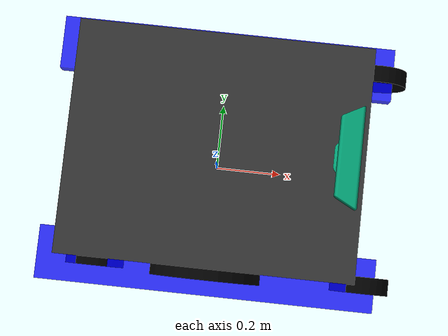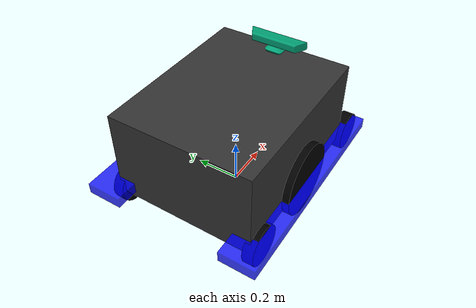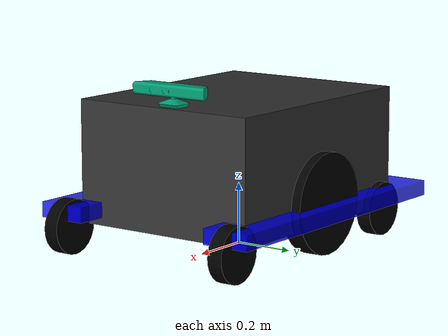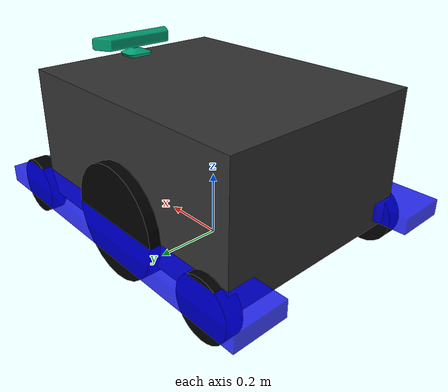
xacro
<?xml version="1.0"?>

<robot xmlns:xacro="http://www.ros.org/wiki/xacro" name="wheelchair">

  <xacro:include filename="$(find baxter_wheelchair_description)/urdf/sensors/kinect_camera.urdf.xacro" />

  <xacro:property name="PI" value="3.14159265359" />
  <xacro:property name="M_PI" value="3.1415926535897931" />

  <xacro:property name="chair_width" value="0.643" /> <!-- From front wheel right joint to front wheel left joint -->
  <xacro:property name="chair_length" value="0.812" /> <!-- From front wheel joint to back wheel joint -->
  <!-- From front wheel joint to head rest -->
  <xacro:property name="chair_height" value="0.4" /> <!-- From front wheel joint to approx height -->
  <xacro:property name="chair_weight" value="10.0" />

  <xacro:property name="main_wheel_length" value="0.065" />
  <xacro:property name="main_wheel_radius" value=".165" />
  <xacro:property name="main_wheel_weight" value="2.0" />

  <xacro:property name="small_wheel_radius" value=".089" />
  <xacro:property name="small_wheel_length" value=".05" />
  <xacro:property name="small_wheel_weight" value="1.0" />

  <!-- Kinect Camera Location (Nominally 0) -->
  <xacro:property name="cal_kinect_x" value="0.0" />
  <xacro:property name="cal_kinect_y" value="0.0" />
  <xacro:property name="cal_kinect_z" value="0.0" />
  <xacro:property name="cal_kinect_roll" value="0.0" />
  <xacro:property name="cal_kinect_pitch" value="0.0" />
  <xacro:property name="cal_kinect_yaw" value="0.0" />

  <xacro:macro name="box_intertia" params="height length width weight" >
    <inertia ixx="${1/12 * weight * (height + length)}" ixy="0" ixz="0" iyy="${1/12 * weight * (width + length)}" iyz="0" izz="${1/12 * weight * (width + height)}" />
  </xacro:macro>

  <xacro:macro name="cylinder_intertia" params="length radius weight" >
    <inertia ixx="${1/12 * weight * (3 * radius * radius + length * length)}" ixy="0" ixz="0" iyy="${1/12 * weight * (3 * radius*radius + length*length)}" iyz="0" izz="${1/2 * weight * radius*radius}" />
  </xacro:macro>

  <link name="base_footprint">
    <visual>
      <origin xyz="0 0 0" rpy="0 0 0" />
        <geometry>
          <box size="0.001 0.001 0.001" />
      </geometry>
    </visual>
  </link>

  <joint name="base_footprint_joint" type="fixed">
    <origin xyz=" 0 0 0.3" rpy="0 0 0"/> <!-- accomodating for change in chair height -->
    <parent link="base_footprint"/>
    <child link="base_link"/>
  </joint>

  <link name="base_link">
    <visual>
      <geometry>
        <box size="${chair_length} ${chair_width} ${chair_height}"/>
      </geometry>
      <material name="darkgray">
        <color rgba=".2 .2 .2 1"/>
      </material>
    </visual>
    <collision>
      <geometry>
        <box size="${chair_length} ${chair_width} ${chair_height}"/>
      </geometry>
    </collision>
    <inertial>
      <mass value="${chair_weight}"/>
      <xacro:box_intertia height="${chair_height}" length="${chair_length}" width="${chair_width}" weight="${chair_weight}" />
    </inertial>
  </link>

  <!-- Base of Kinect Mount -->
  <xacro:kinect_camera_v0 name="kinect_camera" parent="base_link" >
    <origin xyz="${chair_length/2 - 0.02} 0 ${chair_height/2 + 0.05}" rpy="0 0 0" />
  </xacro:kinect_camera_v0>

  <link name="imu_link">
    <inertial>
      <mass value="0.01"/>
      <origin xyz="0 0 0"/>
      <inertia ixx="1.0E-6" ixy="0" ixz="0" iyy="1.0E-6" iyz="0" izz="1.0E-6"/>
    </inertial>
    <visual>
      <origin rpy="0 0 0" xyz="0 0 0"/>
      <geometry>
        <box size="0.01 0.01 0.01"/>
      </geometry>
    </visual>
  </link>

  <joint name="imu_joint" type="fixed">
    <parent link="base_link"/>
    <child link="imu_link"/>
    <origin xyz="0 0 0" rpy="${PI} 0 0"/>
  </joint>

<!--Right Bar -->
  <link name="right_bar">
    <visual>
      <geometry>
        <box size="${chair_length + chair_length/4} ${chair_width/4} ${chair_height/8}"/>
      </geometry>
      <material name="blue">
        <color rgba="0 0 1 0.8"/>
      </material>
    </visual>
    <collision>
      <geometry>
        <box size="${chair_length + chair_length/4} ${chair_width/4} ${chair_height/8}"/>
      </geometry>
    </collision>
    <inertial>
      <mass value="2.0"/>
      <inertia ixx="1e-3" ixy="1e-3" ixz="1e-3" iyy="1e-3" iyz="1e-3" izz="1e-3"/>
    </inertial>
  </link>

  <joint name="right_bar_joint" type="fixed">
    <axis xyz="0 0 0"/>
    <parent link="base_link"/>
    <child link="right_bar"/>
    <origin rpy="0 0 0" xyz="0.0 ${chair_width/2} -${chair_height/4 + chair_height/8}"/> <!--chair_height/4 + chair_height/8 because this is relative to the center of the bar -->
  </joint>

<!--Left Bar -->
  <link name="left_bar">
    <visual>
      <geometry>
        <box size="${chair_length + chair_length/4} ${chair_width/4} ${chair_height/8}"/>
      </geometry>
      <material name="blue">
        <color rgba="0 0 1 0.8"/>
      </material>
    </visual>
    <collision>
      <geometry>
        <box size="${chair_length + chair_length/4} ${chair_width/4} ${chair_height/8}"/>
      </geometry>
    </collision>
    <inertial>
      <mass value="2.0"/>
      <inertia ixx="1e-3" ixy="1e-3" ixz="1e-3" iyy="1e-3" iyz="1e-3" izz="1e-3"/>
    </inertial>
  </link>

  <joint name="left_bar_joint" type="fixed">
    <axis xyz="0 0 0"/>
    <parent link="base_link"/>
    <child link="left_bar"/>
    <origin rpy="0 0 0" xyz="0.0 -${chair_width/2} -${chair_height/4 + chair_height/8}"/> <!--chair_height/4 + chair_height/8 because this is relative to the center of the bar -->
  </joint>

<!--Main Wheels -->
  <joint name="right_main_wheel_joint" type="continuous">
    <axis xyz="0 0 -1"/>
    <parent link="right_bar"/>
    <child link="right_main_wheel"/>
    <origin rpy="1.57075 0 0" xyz="0.0 0.0 ${main_wheel_radius - chair_height/8 - small_wheel_radius}"/> <!-- accomodating for change in chair height -->
  </joint>

  <link name="right_main_wheel">
    <visual>
      <geometry>
        <cylinder length="${main_wheel_length}" radius="${main_wheel_radius}"/>
      </geometry>
      <material name="black">
        <color rgba="0 0 0 1"/>
      </material>
    </visual>
    <collision>
      <geometry>
        <cylinder length="${main_wheel_length}" radius="${main_wheel_radius}"/>
      </geometry>
    </collision>
    <inertial>
      <mass value="${main_wheel_weight}"/>
      <xacro:cylinder_intertia length="${main_wheel_length}" radius="${main_wheel_radius}" weight="${main_wheel_weight}" />
    </inertial>
  </link>

  <joint name="left_main_wheel_joint" type="continuous">
    <axis xyz="0 0 -1"/>
    <parent link="left_bar"/>
    <child link="left_main_wheel"/>
    <origin rpy="1.57075 0 0" xyz="0.0 0.0 ${main_wheel_radius - chair_height/8 - small_wheel_radius}"/> <!-- accomodating for change in chair height -->
  </joint>

  <link name="left_main_wheel">
    <visual>
      <geometry>
        <cylinder length="${main_wheel_length}" radius="${main_wheel_radius}"/>
      </geometry>
      <material name="black">
        <color rgba="0 0 0 1"/>
      </material>
    </visual>
    <collision>
      <geometry>
        <cylinder length="${main_wheel_length}" radius="${main_wheel_radius}"/>
      </geometry>
    </collision>
    <inertial>
      <mass value="${main_wheel_weight}"/>
      <xacro:cylinder_intertia length="${main_wheel_length}" radius="${main_wheel_radius}" weight="${main_wheel_weight}" />
    </inertial>
  </link>

<!--Front Wheels -->
  <link name="front_right_swivel">
    <visual>
      <geometry>
        <cylinder length="0.065" radius="0.01"/>
      </geometry>
      <material name="darkgray">
        <color rgba=".2 .2 .2 1"/>
      </material>
    </visual>
    <collision>
      <geometry>
        <cylinder length="0.065" radius="0.01"/>
      </geometry>
    </collision>
    <inertial>
      <mass value=".1"/>
      <xacro:cylinder_intertia length="0.065" radius="0.01" weight="0.1" />
    </inertial>
  </link>

  <joint name="front_right_swivel_joint" type="continuous">
    <axis xyz="0 0 1"/>
    <parent link="right_bar"/>
    <child link="front_right_swivel"/>
    <origin rpy="0 0 0" xyz="-${chair_length/2} 0.0 -${chair_height/8}"/>
    <dynamics damping="0.0" friction="0.5" />
  </joint>

  <joint name="front_right_wheel_joint" type="continuous">
    <axis xyz="0 0 1"/>
    <parent link="front_right_swivel"/>
    <child link="front_right_wheel"/>
    <origin rpy="1.57075 0 0" xyz="0.065 0 0"/>
    <dynamics damping="0.0" friction="0.5" />
  </joint>

  <link name="front_right_wheel">
    <visual>
      <geometry>
        <cylinder length="${small_wheel_length}" radius="${small_wheel_radius}"/>
      </geometry>
      <material name="black">
        <color rgba="0 0 0 1"/>
      </material>
    </visual>
    <collision>
      <geometry>
        <cylinder length="${small_wheel_length}" radius="${small_wheel_radius}"/>
      </geometry>
      <surface>
        <friction>
          <ode>
            <mu>1.0</mu>
            <mu2>1.0</mu2>
          </ode>
        </friction>
      </surface>
    </collision>
    <inertial>
      <mass value="${small_wheel_weight}"/>
      <xacro:cylinder_intertia length="${small_wheel_length}" radius="${small_wheel_radius}" weight="${small_wheel_weight}" />
    </inertial>
  </link>
  <link name="front_left_swivel">
    <visual>
      <geometry>
        <cylinder length="0.065" radius="0.01"/>
      </geometry>
      <material name="darkgray">
        <color rgba=".2 .2 .2 1"/>
      </material>
    </visual>
    <collision>
      <geometry>
        <cylinder length="0.065" radius="0.01"/>
      </geometry>
    </collision>
    <inertial>
      <mass value=".1"/>
      <xacro:cylinder_intertia length="0.065" radius="0.01" weight="0.1" />
    </inertial>
  </link>

  <joint name="front_left_swivel_joint" type="continuous">
    <axis xyz="0 0 1"/>
    <parent link="left_bar"/>
    <child link="front_left_swivel"/>
    <origin rpy="0 0 0" xyz="-${chair_length/2} 0.0 -${chair_height/8}"/>
    <dynamics damping="0.0" friction="0.5" />
  </joint>

  <joint name="front_left_wheel_joint" type="continuous">
    <axis xyz="0 0 1"/>
    <parent link="front_left_swivel"/>
    <child link="front_left_wheel"/>
    <origin rpy="1.57075 0 0" xyz="0.065 0 0"/>
    <dynamics damping="0" friction="0.5" />
  </joint>

  <link name="front_left_wheel">
    <visual>
      <geometry>
        <cylinder length="0.05" radius="${small_wheel_radius}"/>
      </geometry>
      <material name="black">
        <color rgba="0 0 0 1"/>
      </material>
    </visual>
    <collision>
      <geometry>
        <cylinder length="0.05" radius="${small_wheel_radius}"/>
      </geometry>
      <surface>
        <friction>
          <ode>
            <mu>1.0</mu>
            <mu2>1.0</mu2>
          </ode>
        </friction>
      </surface>
    </collision>
    <inertial>
      <mass value="${small_wheel_weight}"/>
      <xacro:cylinder_intertia length="${small_wheel_length}" radius="${small_wheel_radius}" weight="${small_wheel_weight}" />
    </inertial>
  </link>

<!--Rear Wheels -->
  <link name="rear_right_swivel">
    <visual>
      <geometry>
        <cylinder length="0.065" radius="0.01"/>
      </geometry>
      <material name="darkgray">
        <color rgba=".2 .2 .2 1"/>
      </material>
    </visual>
    <collision>
      <geometry>
        <cylinder length="0.065" radius="0.01"/>
      </geometry>
    </collision>
    <inertial>
      <mass value=".1"/>
      <xacro:cylinder_intertia length="0.065" radius="0.01" weight="0.1" />
    </inertial>
  </link>

   <joint name="rear_right_swivel_joint" type="continuous">
    <axis xyz="0 0 1"/>
    <parent link="right_bar"/>
    <child link="rear_right_swivel"/>
    <origin rpy="0 0 0" xyz="${chair_length/2} 0.0 -${chair_height/8}"/>
    <dynamics damping="0.0" friction="0.5" />
  </joint>

  <joint name="rear_right_wheel_joint" type="continuous">
    <axis xyz="0 0 1"/>
    <parent link="rear_right_swivel"/>
    <child link="rear_right_wheel"/>
    <origin rpy="1.57075 0 0" xyz="0.065 0 0"/>
    <dynamics damping="0" friction="0.5" />
  </joint>

  <link name="rear_right_wheel">
    <visual>
      <geometry>
        <cylinder length="0.05" radius="${small_wheel_radius}"/>
      </geometry>
      <material name="black">
        <color rgba="0 0 0 1"/>
      </material>
    </visual>
    <collision>
      <geometry>
        <cylinder length="0.05" radius="${small_wheel_radius}"/>
      </geometry>
      <surface>
        <friction>
          <ode>
            <mu>1.0</mu>
            <mu2>1.0</mu2>
          </ode>
        </friction>
      </surface>
    </collision>
    <inertial>
      <mass value="${small_wheel_weight}"/>
      <xacro:cylinder_intertia length="${small_wheel_length}" radius="${small_wheel_radius}" weight="${small_wheel_weight}" />
    </inertial>
  </link>

  <link name="rear_left_swivel">
    <visual>
      <geometry>
        <cylinder length="0.065" radius="0.01"/>
      </geometry>
      <material name="darkgray">
        <color rgba=".2 .2 .2 1"/>
      </material>
    </visual>
    <collision>
      <geometry>
        <cylinder length="0.065" radius="0.01"/>
      </geometry>
    </collision>
    <inertial>
      <mass value=".1"/>
      <xacro:cylinder_intertia length="0.065" radius="0.01" weight="0.1" />
    </inertial>
  </link>

   <joint name="rear_left_swivel_joint" type="continuous">
    <axis xyz="0 0 1"/>
    <parent link="left_bar"/>
    <child link="rear_left_swivel"/>
    <origin rpy="0 0 0" xyz="${chair_length/2} 0.0 -${chair_height/8}"/>
    <dynamics damping="0.0" friction="0.5" />
  </joint>

  <joint name="rear_left_wheel_joint" type="continuous">
    <axis xyz="0 0 1"/>
    <parent link="rear_left_swivel"/>
    <child link="rear_left_wheel"/>
    <origin rpy="1.57075 0 0" xyz="0.065 0 0"/>
    <dynamics damping="0" friction="0.5" />
  </joint>

  <link name="rear_left_wheel">
    <visual>
      <geometry>
        <cylinder length="0.05" radius="${small_wheel_radius}"/>
      </geometry>
      <material name="black">
        <color rgba="0 0 0 1"/>
      </material>
    </visual>
    <collision>
      <geometry>
        <cylinder length="0.05" radius="${small_wheel_radius}"/>
      </geometry>
      <surface>
        <friction>
          <ode>
            <mu>1.0</mu>
            <mu2>1.0</mu2>
          </ode>
        </friction>
      </surface>
    </collision>
    <inertial>
      <mass value="${small_wheel_weight}"/>
      <xacro:cylinder_intertia length="${small_wheel_length}" radius="${small_wheel_radius}" weight="${small_wheel_weight}" />
    </inertial>
  </link>

  <!-- Transmission is important to link the joints and the controller -->
  <transmission name="right_main_wheel_joint_trans">
    <type>transmission_interface/SimpleTransmission</type>
    <joint name="right_main_wheel_joint" >
      <hardwareInterface>EffortJointInterface</hardwareInterface>
    </joint>
    <actuator name="right_main_wheel_joint_motor">
      <mechanicalReduction>1</mechanicalReduction>
    </actuator>
  </transmission>

  <transmission name="left_main_wheel_joint_trans">
    <type>transmission_interface/SimpleTransmission</type>
    <joint name="left_main_wheel_joint">
      <hardwareInterface>EffortJointInterface</hardwareInterface>
    </joint>
    <actuator name="left_main_wheel_joint_motor">
      <mechanicalReduction>1</mechanicalReduction>
    </actuator>
  </transmission>
</robot>

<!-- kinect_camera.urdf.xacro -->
<root xmlns:sensor="http://playerstage.sourceforge.net/gazebo/xmlschema/#sensor"
      xmlns:controller="http://playerstage.sourceforge.net/gazebo/xmlschema/#controller"
      xmlns:interface="http://playerstage.sourceforge.net/gazebo/xmlschema/#interface"
      xmlns:xacro="http://www.ros.org/wiki/xacro">

  <xacro:include filename="$(find baxter_wheelchair_description)/urdf/sensors/kinect_camera.gazebo.xacro" />

  <xacro:macro name="kinect_camera_v0" params="name parent *origin">
    <joint name="${name}_frame_joint" type="fixed">
      <insert_block name="origin" />
      <parent link="${parent}"/>
      <child link="${name}_frame"/>
    </joint>
    <link name="${name}_frame">

      <inertial>
        <mass value="0.1" />
        <origin xyz="0 0 0" rpy="0 0 0"/>
        <inertia ixx="0.01"  ixy="0.0"  ixz="0.0"
                 iyy="0.01"  iyz="0.0"
                 izz="0.01" />
      </inertial>

      <visual>
        <origin xyz="0.0 0.012 0" rpy="0 0 0"/>
        <geometry>
          <mesh filename="package://pr2_description/meshes/sensors/kinect_v0/kinect.dae" scale="0.001 0.001 0.001" />
        </geometry>
      </visual>

      <collision>
        <origin xyz="0.0 0.012 0" rpy="0 0 0"/>
        <geometry>
          <mesh filename="package://pr2_description/meshes/sensors/kinect_v0/kinect.dae" scale="0.001 0.001 0.001" />
        </geometry>
      </collision>

    </link>

    <joint name="${name}_optical_joint" type="fixed">
      <origin xyz="${cal_kinect_x}            ${cal_kinect_y}         ${cal_kinect_z}"
                rpy="${-M_PI/2+cal_kinect_roll} ${0.0+cal_kinect_pitch} ${-M_PI/2+cal_kinect_yaw}" />
      <parent link="${name}_frame"/>
      <child link="${name}_optical_frame"/>
    </joint>

    <link name="${name}_optical_frame"/>

    <!-- extensions -->
    <xacro:kinect_camera_gazebo_v0 name="${name}" />
  </xacro:macro>

</root>
